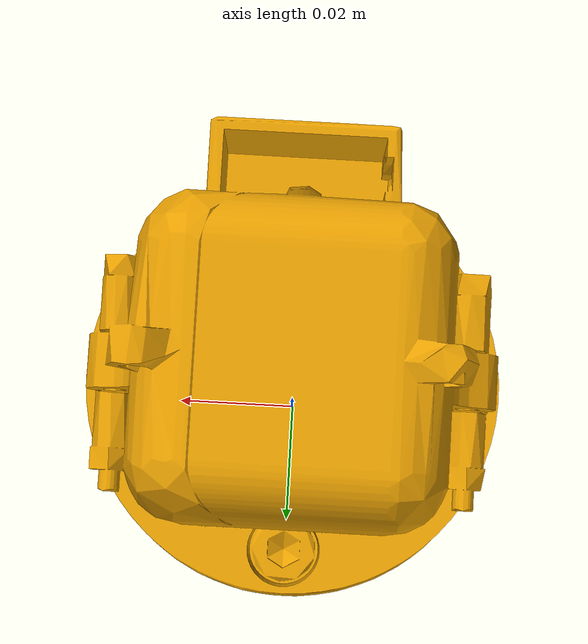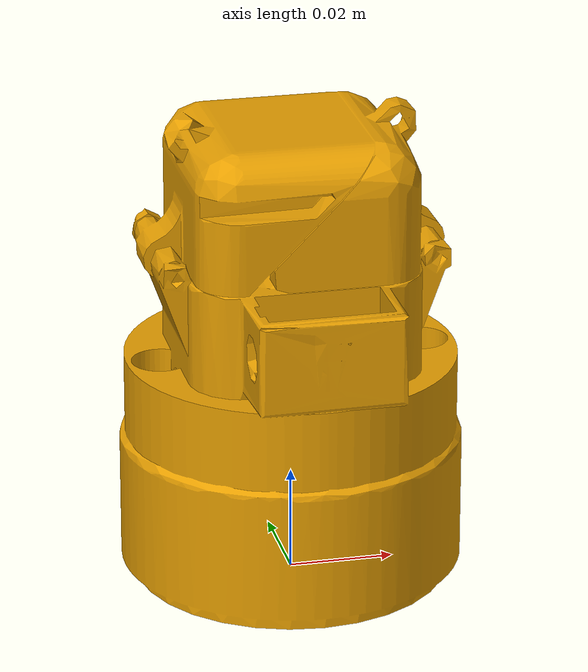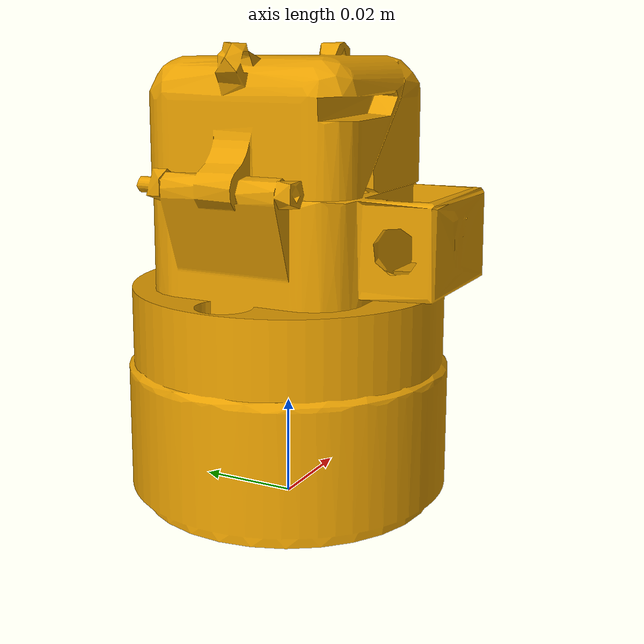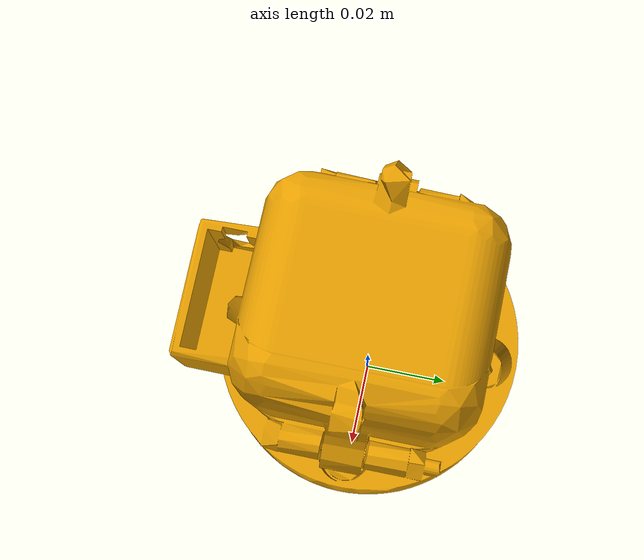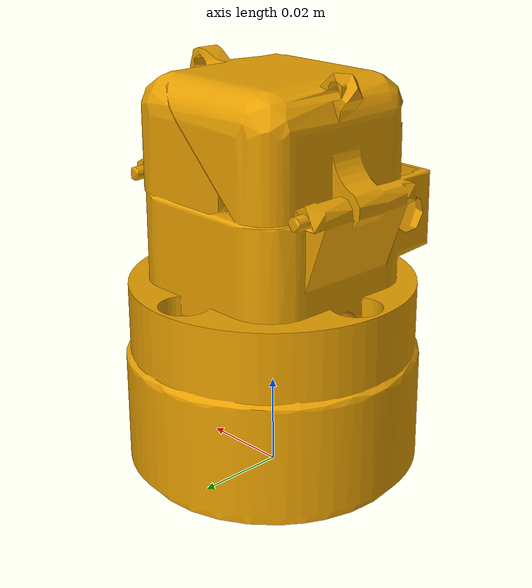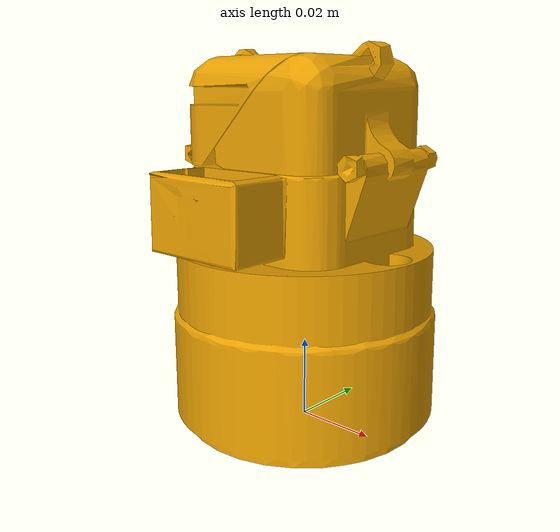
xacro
<?xml version="1.0"?>
<robot xmlns:xacro="http://www.ros.org/wiki/xacro" name="ball_gripper">

  <link name="gripper_base_link">
    <visual>
      <origin rpy="0 0 0" xyz="0 0 0.065"/>
      <geometry>
        <mesh filename="package://world_sim/models/Gripper/meshes/ball_gripper.dae"/>
      </geometry>
    </visual>

    <collision>
      <origin rpy="0 0 0" xyz="0 0 0.065"/>
      <geometry>
        <mesh filename="package://world_sim/models/Gripper/meshes/ball_gripper.dae"/>
      </geometry>
    </collision>

    <inertial>
      <mass value="0.125" />
      <inertia ixx="0.01" ixy="-0.00" ixz="0.0" iyy="0.01" iyz="0.0" izz="0.01" />
    </inertial>
  </link>

</robot>
